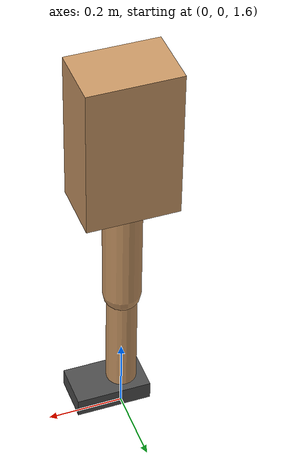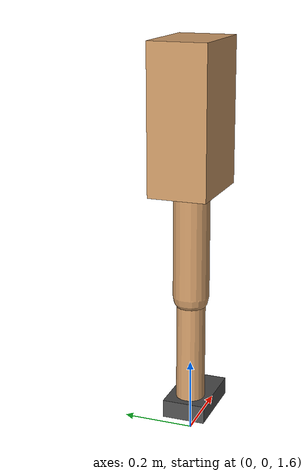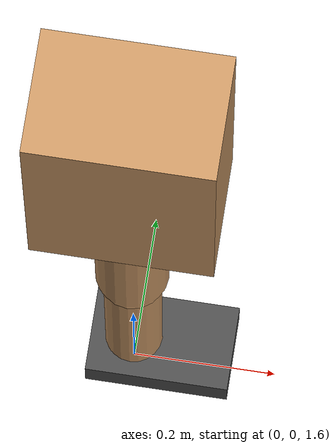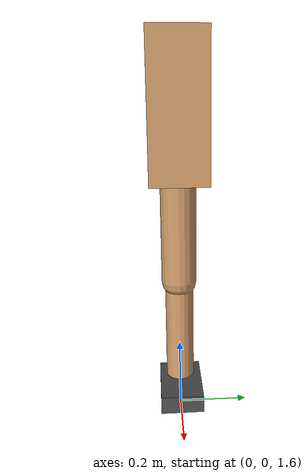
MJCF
<mujoco model="auto_jumping_humanoid">
  <compiler angle="radian" coordinate="local" inertiafromgeom="true"/>

  <option timestep="0.002" gravity="0 0 -9.81">
    <flag warmstart="enable"/>
  </option>

  <size nconmax="50" njmax="200"/>

  <visual>
    <rgba haze="0.15 0.25 0.35 1"/>
    <quality shadowsize="2048"/>
    <map stiffness="700" shadowscale="0.5" fogstart="10" fogend="15"/>
  </visual>

  <asset>
    <texture type="skybox" builtin="gradient" rgb1="0.3 0.5 0.7" rgb2="0 0 0" width="512" height="512"/>
    <texture name="grid" type="2d" builtin="checker" rgb1="0.2 0.3 0.4" rgb2="0.1 0.2 0.3" width="512" height="512" mark="cross" markrgb="1 1 1"/>
    <material name="grid" texture="grid" texrepeat="1 1" texuniform="true" reflectance="0.2"/>
    <material name="body" rgba="0.8 0.6 0.4 1"/>
    <material name="foot" rgba="0.3 0.3 0.3 1"/>
  </asset>

  <default>
    <geom contype="1" conaffinity="1" condim="3" material="body"/>
    <joint type="hinge" pos="0 0 0" axis="0 1 0" limited="true" damping="0.8"/>
    <motor ctrlrange="-1 1" ctrllimited="true"/>
  </default>

  <worldbody>
    <!-- Ground plane -->
    <geom name="ground" type="plane" size="10 10 0.1" material="grid" contype="1" conaffinity="1"/>

    <!-- Light -->
    <light pos="0 4 4" dir="0 -1 -1" diffuse="1 1 1"/>

    <!-- Root body (dropped from sky) -->
    <body name="torso" pos="0 0 2.5">
      <!-- Planar movement: X translation, Z translation (up/down), Y rotation -->
      <joint name="root_x" type="slide" axis="1 0 0" range="-5 5" damping="0.1"/>
      <joint name="root_z" type="slide" axis="0 0 1" range="0 5" damping="0.2"/>
      <joint name="root_rot" type="hinge" axis="0 1 0" range="-1.57 1.57" damping="0.3"/>

      <!-- Torso -->
      <geom name="torso" type="box" size="0.12 0.08 0.2" mass="15"/>
      <site name="torso_site" pos="0 0 0" size="0.02"/>

      <!-- Thigh -->
      <body name="thigh" pos="0 0 -0.2">
        <!-- Hip joint - zero stiffness = free falling -->
        <joint name="hip" range="-0.8 1.5" stiffness="0" armature="0.05" damping="1.5"/>
        <geom name="thigh" type="capsule" fromto="0 0 0 0 0 -0.3" size="0.05" mass="6"/>

        <!-- Shin -->
        <body name="shin" pos="0 0 -0.3">
          <!-- Knee joint - zero stiffness = free falling -->
          <joint name="knee" range="0 1.8" stiffness="0" armature="0.05" damping="2.0"/>
          <geom name="shin" type="capsule" fromto="0 0 0 0 0 -0.3" size="0.04" mass="3"/>

          <!-- Foot -->
          <body name="foot" pos="0 0 -0.3">
            <!-- Ankle joint - zero stiffness = free falling -->
            <joint name="ankle" range="-0.8 0.8" stiffness="0" armature="0.02" damping="1.0"/>
            <geom name="foot" type="box" size="0.1 0.06 0.025" pos="0.04 0 -0.025" mass="1" material="foot"
                  contype="1" conaffinity="1" friction="1.2 0.1 0.1"/>
            <site name="foot_contact" pos="0 0 -0.03" size="0.02"/>
          </body>
        </body>
      </body>
    </body>
  </worldbody>

  <actuator>
    <!-- Moderate strength actuators -->
    <motor name="hip_motor" joint="hip" gear="35" ctrlrange="-35 35"/>
    <motor name="knee_motor" joint="knee" gear="30" ctrlrange="-30 30"/>
    <motor name="ankle_motor" joint="ankle" gear="20" ctrlrange="-20 20"/>
  </actuator>

  <!-- Automatic jumping controller using general actuators -->
  <actuator>
    <general name="jump_hip" joint="hip" dyntype="user" gainprm="35 0 0 0 0 0 0 0 0 0" biasprm="0 0 0 0 0 0 0 0 0 0"/>
    <general name="jump_knee" joint="knee" dyntype="user" gainprm="30 0 0 0 0 0 0 0 0 0" biasprm="0 0 0 0 0 0 0 0 0 0"/>
    <general name="jump_ankle" joint="ankle" dyntype="user" gainprm="20 0 0 0 0 0 0 0 0 0" biasprm="0 0 0 0 0 0 0 0 0 0"/>
  </actuator>

  <sensor>
    <!-- Joint sensors -->
    <jointpos name="hip_pos" joint="hip"/>
    <jointpos name="knee_pos" joint="knee"/>
    <jointpos name="ankle_pos" joint="ankle"/>

    <jointvel name="hip_vel" joint="hip"/>
    <jointvel name="knee_vel" joint="knee"/>
    <jointvel name="ankle_vel" joint="ankle"/>

    <!-- Body state -->
    <framepos name="torso_pos" objtype="site" objname="torso_site"/>
    <framequat name="torso_quat" objtype="site" objname="torso_site"/>

    <!-- Contact sensor -->
    <touch name="foot_contact" site="foot_contact"/>

    <!-- Time sensor for jump sequence -->
    <user name="time" dim="1"/>
  </sensor>
</mujoco>
